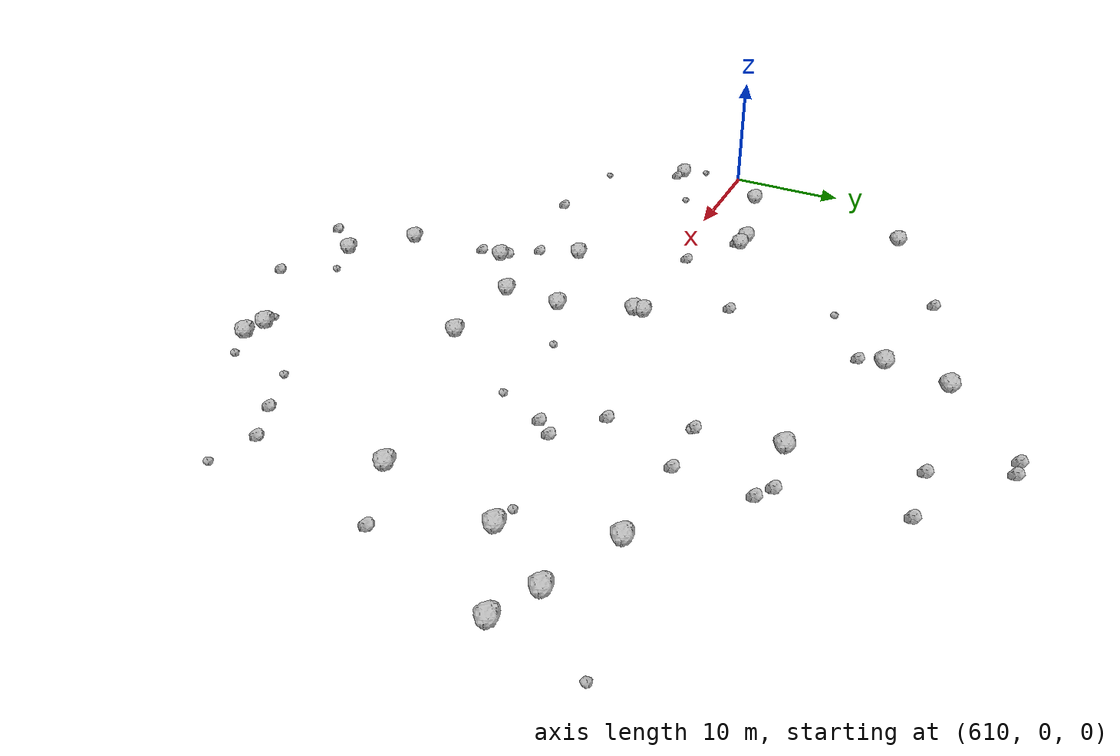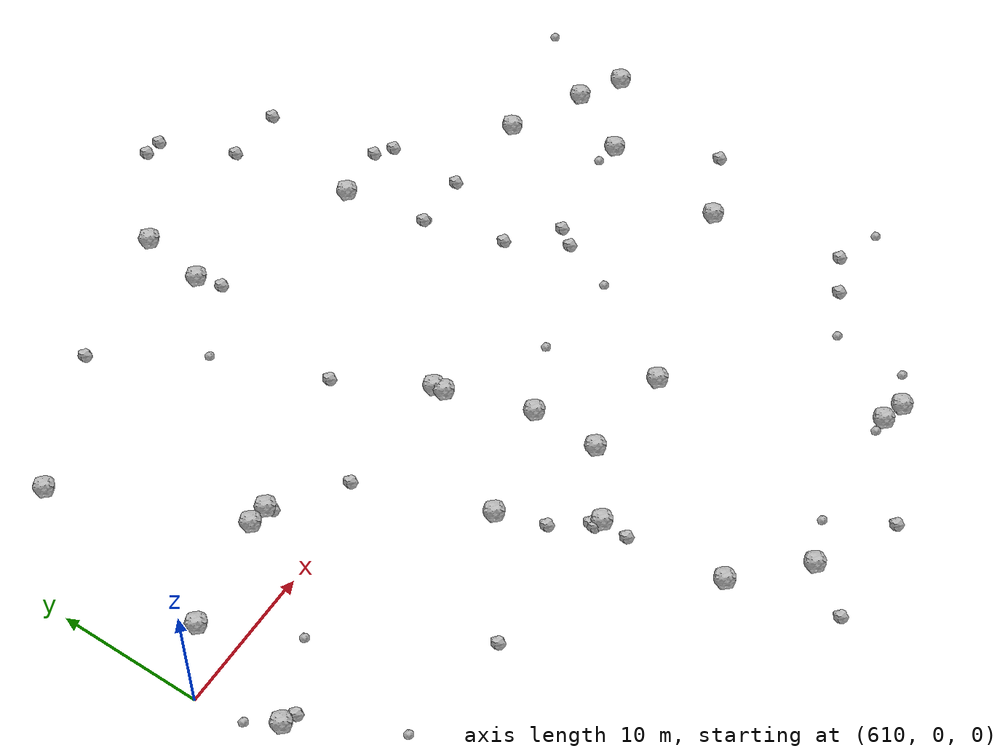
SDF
<sdf version="1.6">
 <world name="default">
  <include><uri>model://sun</uri></include>
  <model name="rock1_16_3">
   <include><uri>model://rock1</uri><pose>623.219124812112 4.540414600227692 0.5 0 0 0</pose></include>
  </model>
  <model name="rock1_16_4">
   <include><uri>model://rock1</uri><pose>652.6254247599541 -24.946803160344217 0.5 0 0 0</pose></include>
  </model>
  <model name="rock1_16_5">
   <include><uri>model://rock1</uri><pose>639.1574540002957 -26.159747261678447 0.5 0 0 0</pose></include>
  </model>
  <model name="rock1_16_6">
   <include><uri>model://rock1</uri><pose>636.7720440601363 1.0411193459190926 0.5 0 0 0</pose></include>
  </model>
  <model name="rock1_16_7">
   <include><uri>model://rock1</uri><pose>638.7559980863936 -10.213838060605134 0.5 0 0 0</pose></include>
  </model>
  <model name="rock1_16_8">
   <include><uri>model://rock1</uri><pose>660.4928578622735 2.116822320855036 0.5 0 0 0</pose></include>
  </model>
  <model name="rock1_16_9">
   <include><uri>model://rock1</uri><pose>631.0069230898143 -7.60093089462336 0.5 0 0 0</pose></include>
  </model>
  <model name="rock1_16_10">
   <include><uri>model://rock1</uri><pose>651.0077100284221 -24.49416406469556 0.5 0 0 0</pose></include>
  </model>
  <model name="rock1_16_11">
   <include><uri>model://rock1</uri><pose>635.0967045964004 19.30268499066429 0.5 0 0 0</pose></include>
  </model>
  <model name="rock1_16_12">
   <include><uri>model://rock1</uri><pose>634.2939593031962 -13.556315973556387 0.5 0 0 0</pose></include>
  </model>
  <model name="rock1_16_13">
   <include><uri>model://rock1</uri><pose>645.476458318296 -10.719907013303494 0.5 0 0 0</pose></include>
  </model>
  <model name="rock1_16_14">
   <include><uri>model://rock1</uri><pose>658.0914330945981 9.10074057619952 0.5 0 0 0</pose></include>
  </model>
  <model name="rock1_16_15">
   <include><uri>model://rock1</uri><pose>635.8252412052735 23.9158326424445 0.5 0 0 0</pose></include>
  </model>
  <model name="rock1_16_16">
   <include><uri>model://rock1</uri><pose>636.8650694666877 0.2970081006861882 0.5 0 0 0</pose></include>
  </model>
  <model name="rock1_16_17">
   <include><uri>model://rock1</uri><pose>614.1291301279332 3.0008039231383137 0.5 0 0 0</pose></include>
  </model>
  <model name="rock1_16_18">
   <include><uri>model://rock1</uri><pose>666.009500904141 5.104652490570068 0.5 0 0 0</pose></include>
  </model>
  <model name="rock1_16_19">
   <include><uri>model://rock1</uri><pose>634.9968063544304 -22.12052735756795 0.5 0 0 0</pose></include>
  </model>
  <model name="rock1_16_20">
   <include><uri>model://rock1</uri><pose>646.7742556480637 15.265330743444053 0.5 0 0 0</pose></include>
  </model>
  <model name="rock1_16_21">
   <include><uri>model://rock1</uri><pose>659.2638146663165 -6.656953391197607 0.5 0 0 0</pose></include>
  </model>
  <model name="rock1_16_22">
   <include><uri>model://rock1</uri><pose>616.4689146716947 17.01305009149607 0.5 0 0 0</pose></include>
  </model>
  <model name="rock1_16_23">
   <include><uri>model://rock1</uri><pose>663.1563710242979 6.689038289958042 0.5 0 0 0</pose></include>
  </model>
  <model name="rock1_16_24">
   <include><uri>model://rock1</uri><pose>611.6611118272015 -5.33001917591373 0.5 0 0 0</pose></include>
  </model>
  <model name="rock1_16_25">
   <include><uri>model://rock1</uri><pose>638.8330946601685 -5.465230749539387 0.5 0 0 0</pose></include>
  </model>
  <model name="rock1_16_26">
   <include><uri>model://rock1</uri><pose>621.7660287902322 4.6335791552728764 0.5 0 0 0</pose></include>
  </model>
  <model name="rock2_16_0">
   <include><uri>model://rock2</uri><pose>651.4913980342424 0.04813192577166703 0.3 0 0 0</pose></include>
  </model>
  <model name="rock2_16_1">
   <include><uri>model://rock2</uri><pose>658.3068262319496 -17.049929459562883 0.3 0 0 0</pose></include>
  </model>
  <model name="rock2_16_2">
   <include><uri>model://rock2</uri><pose>635.4885169284438 17.5428516076259 0.3 0 0 0</pose></include>
  </model>
  <model name="rock2_16_3">
   <include><uri>model://rock2</uri><pose>645.1780176373969 23.745523139003645 0.3 0 0 0</pose></include>
  </model>
  <model name="rock2_16_4">
   <include><uri>model://rock2</uri><pose>652.412860110502 1.2732009957688746 0.3 0 0 0</pose></include>
  </model>
  <model name="rock2_16_5">
   <include><uri>model://rock2</uri><pose>623.2959438119492 4.1263875696052 0.3 0 0 0</pose></include>
  </model>
  <model name="rock2_16_6">
   <include><uri>model://rock2</uri><pose>651.7525052262904 14.901501770854765 0.3 0 0 0</pose></include>
  </model>
  <model name="rock2_16_7">
   <include><uri>model://rock2</uri><pose>650.5945220494832 15.744255506807313 0.3 0 0 0</pose></include>
  </model>
  <model name="rock2_16_8">
   <include><uri>model://rock2</uri><pose>647.6768929637752 9.51827263286237 0.3 0 0 0</pose></include>
  </model>
  <model name="rock2_16_9">
   <include><uri>model://rock2</uri><pose>663.7528229817967 -4.438878671538927 0.3 0 0 0</pose></include>
  </model>
  <model name="rock2_16_10">
   <include><uri>model://rock2</uri><pose>636.7196398296819 -29.35375305378676 0.3 0 0 0</pose></include>
  </model>
  <model name="rock2_16_11">
   <include><uri>model://rock2</uri><pose>633.405384578004 7.052052323537609 0.3 0 0 0</pose></include>
  </model>
  <model name="rock2_16_12">
   <include><uri>model://rock2</uri><pose>649.2630266129211 3.9592457293922223 0.3 0 0 0</pose></include>
  </model>
  <model name="rock2_16_13">
   <include><uri>model://rock2</uri><pose>612.6102465361397 -5.6597178017201735 0.3 0 0 0</pose></include>
  </model>
  <model name="rock2_16_14">
   <include><uri>model://rock2</uri><pose>641.715004211723 28.90083287572611 0.3 0 0 0</pose></include>
  </model>
  <model name="rock2_16_15">
   <include><uri>model://rock2</uri><pose>651.6570943821846 9.562449837225785 0.3 0 0 0</pose></include>
  </model>
  <model name="rock2_16_16">
   <include><uri>model://rock2</uri><pose>633.7610749538231 -13.013648464886394 0.3 0 0 0</pose></include>
  </model>
  <model name="rock2_16_17">
   <include><uri>model://rock2</uri><pose>644.4688280196524 -29.009924594840307 0.3 0 0 0</pose></include>
  </model>
  <model name="rock2_16_18">
   <include><uri>model://rock2</uri><pose>633.6698380275817 -13.325770811458145 0.3 0 0 0</pose></include>
  </model>
  <model name="rock2_16_19">
   <include><uri>model://rock2</uri><pose>642.9570576309502 28.787971458244797 0.3 0 0 0</pose></include>
  </model>
  <model name="rock2_16_20">
   <include><uri>model://rock2</uri><pose>627.7376749619461 1.259679504899868 0.3 0 0 0</pose></include>
  </model>
  <model name="rock2_16_21">
   <include><uri>model://rock2</uri><pose>623.4063648843548 -12.980640226459915 0.3 0 0 0</pose></include>
  </model>
  <model name="rock2_16_22">
   <include><uri>model://rock2</uri><pose>625.8842253259602 21.476190386080944 0.3 0 0 0</pose></include>
  </model>
  <model name="rock2_16_23">
   <include><uri>model://rock2</uri><pose>634.1563474280499 -15.443565646782778 0.3 0 0 0</pose></include>
  </model>
  <model name="rock2_16_24">
   <include><uri>model://rock2</uri><pose>632.0830413694564 -10.836342433896679 0.3 0 0 0</pose></include>
  </model>
  <model name="rock2_16_25">
   <include><uri>model://rock2</uri><pose>660.8622698036212 -15.64927828190022 0.3 0 0 0</pose></include>
  </model>
  <model name="rock2_16_26">
   <include><uri>model://rock2</uri><pose>649.3198784181433 23.65603898365842 0.3 0 0 0</pose></include>
  </model>
  <model name="rock3_16_0">
   <include><uri>model://rock3</uri><pose>615.3013854386433 -12.026947181584134 0.2 0 0 0</pose></include>
  </model>
  <model name="rock3_16_1">
   <include><uri>model://rock3</uri><pose>654.7676424939561 -23.807845789615634 0.2 0 0 0</pose></include>
  </model>
  <model name="rock3_16_2">
   <include><uri>model://rock3</uri><pose>617.0703676010836 -3.0103013323348407 0.2 0 0 0</pose></include>
  </model>
  <model name="rock3_16_3">
   <include><uri>model://rock3</uri><pose>642.1450541001853 -24.988597080844897 0.2 0 0 0</pose></include>
  </model>
  <model name="rock3_16_4">
   <include><uri>model://rock3</uri><pose>655.129444266873 -18.735637430420322 0.2 0 0 0</pose></include>
  </model>
  <model name="rock3_16_5">
   <include><uri>model://rock3</uri><pose>630.477646580953 14.660129464218926 0.2 0 0 0</pose></include>
  </model>
  <model name="rock3_16_6">
   <include><uri>model://rock3</uri><pose>666.849357218948 11.253855844679464 0.2 0 0 0</pose></include>
  </model>
  <model name="rock3_16_7">
   <include><uri>model://rock3</uri><pose>610.4262340194008 -3.3689705739193094 0.2 0 0 0</pose></include>
  </model>
  <model name="rock3_16_8">
   <include><uri>model://rock3</uri><pose>663.8748966617728 -16.783075894290803 0.2 0 0 0</pose></include>
  </model>
  <model name="rock3_16_9">
   <include><uri>model://rock3</uri><pose>658.9043984773472 2.399844006679352 0.2 0 0 0</pose></include>
  </model>
  <model name="rock3_16_10">
   <include><uri>model://rock3</uri><pose>643.5363039642666 -3.272656926080998 0.2 0 0 0</pose></include>
  </model>
  <model name="rock3_16_11">
   <include><uri>model://rock3</uri><pose>647.8427299014727 9.304755124684085 0.2 0 0 0</pose></include>
  </model>
  <model name="rock3_16_12">
   <include><uri>model://rock3</uri><pose>649.9539671726992 -24.502043835101087 0.2 0 0 0</pose></include>
  </model>
  <model name="rock3_16_13">
   <include><uri>model://rock3</uri><pose>649.9888197418301 -3.6980632523799315 0.2 0 0 0</pose></include>
  </model>
 </world>
</sdf>
